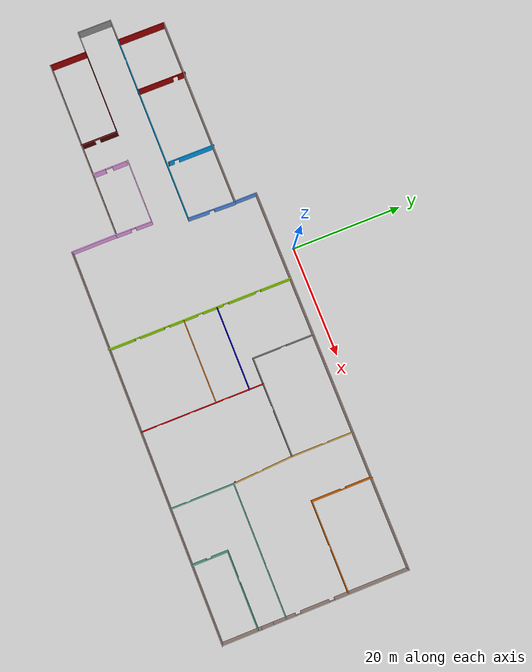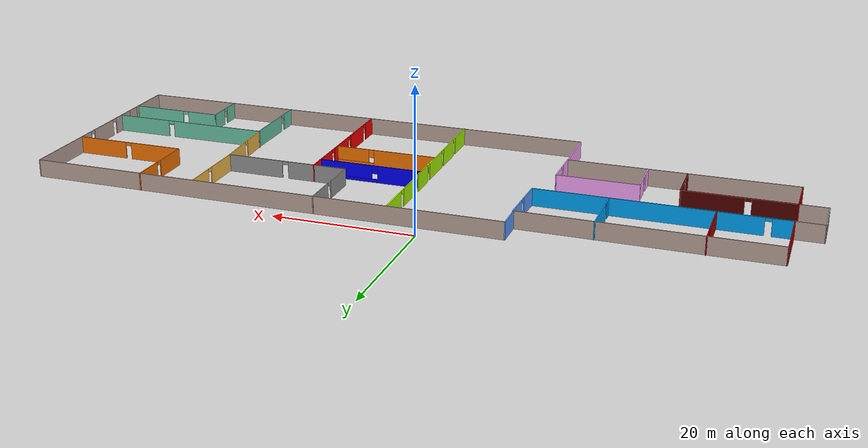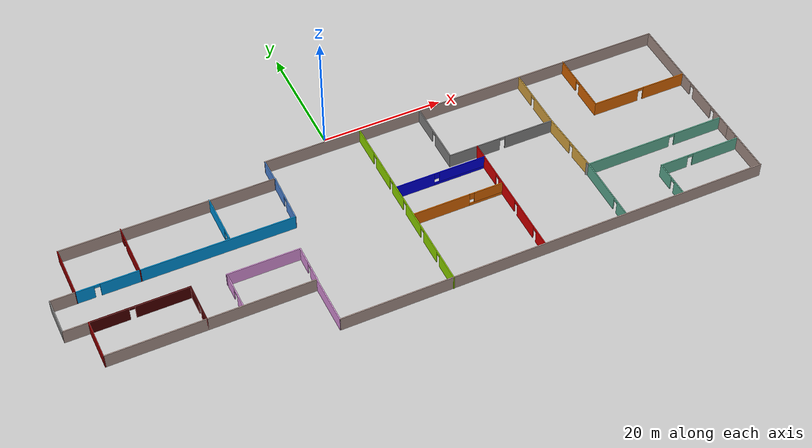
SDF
<sdf version="1.6">
 <model name="model2">
  <pose>4.15653 -19.2769 0 0 -0 0</pose>
  <link name="Wall_10">
   <collision name="Wall_10_Collision">
    <geometry><box><size>6.75 0.15 2.5</size></box></geometry>
    <pose>0 0 1.25 0 -0 0</pose>
   </collision>
   <visual name="Wall_10_Visual">
    <pose>0 0 1.25 0 -0 0</pose>
    <geometry><box><size>6.75 0.15 2.5</size></box></geometry>
    <material>
     <script><uri>file://media/materials/scripts/gazebo.material</uri><name>Gazebo/Grey</name></script>
     <ambient>0.666667 0 0 1</ambient>
    </material>
    <meta><layer>0</layer></meta>
   </visual>
   <pose>-49.5965 -5.19575 0 0 -0 1.5708</pose>
  </link>
  <link name="Wall_11">
   <collision name="Wall_11_Collision">
    <geometry><box><size>4 0.15 2.5</size></box></geometry>
    <pose>0 0 1.25 0 -0 0</pose>
   </collision>
   <visual name="Wall_11_Visual">
    <pose>0 0 1.25 0 -0 0</pose>
    <geometry><box><size>4 0.15 2.5</size></box></geometry>
    <material>
     <script><uri>file://media/materials/scripts/gazebo.material</uri><name>Gazebo/Grey</name></script>
     <ambient>0.760784 0.662745 0.627451 1</ambient>
    </material>
    <meta><layer>0</layer></meta>
   </visual>
   <pose>-51.5215 -1.89576 0 0 -0 3.14159</pose>
  </link>
  <link name="Wall_12">
   <collision name="Wall_12_Collision">
    <geometry><box><size>6.25 0.15 2.5</size></box></geometry>
    <pose>0 0 1.25 0 -0 0</pose>
   </collision>
   <visual name="Wall_12_Visual">
    <pose>0 0 1.25 0 -0 0</pose>
    <geometry><box><size>6.25 0.15 2.5</size></box></geometry>
    <material>
     <script><uri>file://media/materials/scripts/gazebo.material</uri><name>Gazebo/Grey</name></script>
     <ambient>0 0 0 1</ambient>
    </material>
    <meta><layer>0</layer></meta>
   </visual>
   <pose>-53.4465 1.15425 0 0 -0 1.5708</pose>
  </link>
  <link name="Wall_13">
   <collision name="Wall_13_Collision">
    <geometry><box><size>4 0.15 2.5</size></box></geometry>
    <pose>0 0 1.25 0 -0 0</pose>
   </collision>
   <visual name="Wall_13_Visual">
    <pose>0 0 1.25 0 -0 0</pose>
    <geometry><box><size>4 0.15 2.5</size></box></geometry>
    <material>
     <script><uri>file://media/materials/scripts/gazebo.material</uri><name>Gazebo/Grey</name></script>
     <ambient>0.760784 0.662745 0.627451 1</ambient>
    </material>
    <meta><layer>0</layer></meta>
   </visual>
   <pose>-51.5215 4.20425 0 0 -0 0</pose>
  </link>
  <link name="Wall_138">
   <pose>-39.8446 8.53928 0 0 0 -1.5708</pose>
   <visual name="Wall_138_Visual_0">
    <pose>-3.78309 0 1.25 0 -0 0</pose>
    <geometry><box><size>1.43381 0.15 2.5</size></box></geometry>
    <material>
     <script><uri>file://media/materials/scripts/gazebo.material</uri><name>Gazebo/Grey</name></script>
     <ambient>0.666667 0 0 1</ambient>
    </material>
    <meta><layer>0</layer></meta>
   </visual>
   <collision name="Wall_138_Collision_0">
    <geometry><box><size>1.43381 0.15 2.5</size></box></geometry>
    <pose>-3.78309 0 1.25 0 -0 0</pose>
   </collision>
   <visual name="Wall_138_Visual_1">
    <pose>1.16691 0 1.25 0 -0 0</pose>
    <geometry><box><size>6.66619 0.15 2.5</size></box></geometry>
    <material>
     <script><uri>file://media/materials/scripts/gazebo.material</uri><name>Gazebo/Grey</name></script>
     <ambient>0.666667 0 0 1</ambient>
    </material>
    <meta><layer>0</layer></meta>
   </visual>
   <collision name="Wall_138_Collision_1">
    <geometry><box><size>6.66619 0.15 2.5</size></box></geometry>
    <pose>1.16691 0 1.25 0 -0 0</pose>
   </collision>
   <visual name="Wall_138_Visual_2">
    <pose>-2.61619 0 2.25 0 -0 0</pose>
    <geometry><box><size>0.9 0.15 0.5</size></box></geometry>
    <material>
     <script><uri>file://media/materials/scripts/gazebo.material</uri><name>Gazebo/Grey</name></script>
     <ambient>0.666667 0 0 1</ambient>
    </material>
    <meta><layer>0</layer></meta>
   </visual>
   <collision name="Wall_138_Collision_2">
    <geometry><box><size>0.9 0.15 0.5</size></box></geometry>
    <pose>-2.61619 0 2.25 0 -0 0</pose>
   </collision>
  </link>
  <link name="Wall_14">
   <collision name="Wall_14_Collision">
    <geometry><box><size>8.75 0.15 2.5</size></box></geometry>
    <pose>0 0 1.25 0 -0 0</pose>
   </collision>
   <visual name="Wall_14_Visual">
    <pose>0 0 1.25 0 -0 0</pose>
    <geometry><box><size>8.75 0.15 2.5</size></box></geometry>
    <material>
     <script><uri>file://media/materials/scripts/gazebo.material</uri><name>Gazebo/Grey</name></script>
     <ambient>0.666667 0 0 1</ambient>
    </material>
    <meta><layer>0</layer></meta>
   </visual>
   <pose>-49.5965 8.50425 0 0 -0 1.5708</pose>
  </link>
  <link name="Wall_140">
   <pose>-25.8529 8.68288 0 0 0 -1.5708</pose>
   <visual name="Wall_140_Visual_0">
    <pose>-0.979474 0 1.25 0 -0 0</pose>
    <geometry><box><size>6.54105 0.15 2.5</size></box></geometry>
    <material>
     <script><uri>file://media/materials/scripts/gazebo.material</uri><name>Gazebo/Grey</name></script>
     <ambient>0 0.666667 1 1</ambient>
    </material>
    <meta><layer>0</layer></meta>
   </visual>
   <collision name="Wall_140_Collision_0">
    <geometry><box><size>6.54105 0.15 2.5</size></box></geometry>
    <pose>-0.979474 0 1.25 0 -0 0</pose>
   </collision>
   <visual name="Wall_140_Visual_1">
    <pose>3.72053 0 1.25 0 -0 0</pose>
    <geometry><box><size>1.05895 0.15 2.5</size></box></geometry>
    <material>
     <script><uri>file://media/materials/scripts/gazebo.material</uri><name>Gazebo/Grey</name></script>
     <ambient>0 0.666667 1 1</ambient>
    </material>
    <meta><layer>0</layer></meta>
   </visual>
   <collision name="Wall_140_Collision_1">
    <geometry><box><size>1.05895 0.15 2.5</size></box></geometry>
    <pose>3.72053 0 1.25 0 -0 0</pose>
   </collision>
   <visual name="Wall_140_Visual_2">
    <pose>2.74105 0 2.25 0 -0 0</pose>
    <geometry><box><size>0.9 0.15 0.5</size></box></geometry>
    <material>
     <script><uri>file://media/materials/scripts/gazebo.material</uri><name>Gazebo/Grey</name></script>
     <ambient>0 0.666667 1 1</ambient>
    </material>
    <meta><layer>0</layer></meta>
   </visual>
   <collision name="Wall_140_Collision_2">
    <geometry><box><size>0.9 0.15 0.5</size></box></geometry>
    <pose>2.74105 0 2.25 0 -0 0</pose>
   </collision>
  </link>
  <link name="Wall_142">
   <collision name="Wall_142_Collision">
    <geometry><box><size>0.15 0.15 2.5</size></box></geometry>
    <pose>0 0 1.25 0 -0 0</pose>
   </collision>
   <visual name="Wall_142_Visual">
    <pose>0 0 1.25 0 -0 0</pose>
    <geometry><box><size>0.15 0.15 2.5</size></box></geometry>
    <material>
     <script><uri>file://media/materials/scripts/gazebo.material</uri><name>Gazebo/Grey</name></script>
     <ambient>1 1 1 1</ambient>
    </material>
    <meta><layer>0</layer></meta>
   </visual>
   <pose>-25.8529 4.50788 0 0 -0 0</pose>
  </link>
  <link name="Wall_144">
   <pose>-41.9215 -1.89576 0 0 -0 0</pose>
   <visual name="Wall_144_Visual_0">
    <pose>-4.71669 0 1.25 0 -0 0</pose>
    <geometry><box><size>6.06663 0.15 2.5</size></box></geometry>
    <material>
     <script><uri>file://media/materials/scripts/gazebo.material</uri><name>Gazebo/Grey</name></script>
     <ambient>0.333333 0 0 1</ambient>
    </material>
    <meta><layer>0</layer></meta>
   </visual>
   <collision name="Wall_144_Collision_0">
    <geometry><box><size>6.06663 0.15 2.5</size></box></geometry>
    <pose>-4.71669 0 1.25 0 -0 0</pose>
   </collision>
   <visual name="Wall_144_Visual_1">
    <pose>3.48331 0 1.25 0 -0 0</pose>
    <geometry><box><size>8.53337 0.15 2.5</size></box></geometry>
    <material>
     <script><uri>file://media/materials/scripts/gazebo.material</uri><name>Gazebo/Grey</name></script>
     <ambient>0.333333 0 0 1</ambient>
    </material>
    <meta><layer>0</layer></meta>
   </visual>
   <collision name="Wall_144_Collision_1">
    <geometry><box><size>8.53337 0.15 2.5</size></box></geometry>
    <pose>3.48331 0 1.25 0 -0 0</pose>
   </collision>
   <visual name="Wall_144_Visual_2">
    <pose>-1.23337 0 2.25 0 -0 0</pose>
    <geometry><box><size>0.9 0.15 0.5</size></box></geometry>
    <material>
     <script><uri>file://media/materials/scripts/gazebo.material</uri><name>Gazebo/Grey</name></script>
     <ambient>0.333333 0 0 1</ambient>
    </material>
    <meta><layer>0</layer></meta>
   </visual>
   <collision name="Wall_144_Collision_2">
    <geometry><box><size>0.9 0.15 0.5</size></box></geometry>
    <pose>-1.23337 0 2.25 0 -0 0</pose>
   </collision>
  </link>
  <link name="Wall_145">
   <pose>-34.2465 -5.19575 0 0 0 -1.5708</pose>
   <visual name="Wall_145_Visual_0">
    <pose>-1.70278 0 1.25 0 -0 0</pose>
    <geometry><box><size>3.34444 0.15 2.5</size></box></geometry>
    <material>
     <script><uri>file://media/materials/scripts/gazebo.material</uri><name>Gazebo/Grey</name></script>
     <ambient>0.333333 0 0 1</ambient>
    </material>
    <meta><layer>0</layer></meta>
   </visual>
   <collision name="Wall_145_Collision_0">
    <geometry><box><size>3.34444 0.15 2.5</size></box></geometry>
    <pose>-1.70278 0 1.25 0 -0 0</pose>
   </collision>
   <visual name="Wall_145_Visual_1">
    <pose>2.12222 0 1.25 0 -0 0</pose>
    <geometry><box><size>2.50556 0.15 2.5</size></box></geometry>
    <material>
     <script><uri>file://media/materials/scripts/gazebo.material</uri><name>Gazebo/Grey</name></script>
     <ambient>0.333333 0 0 1</ambient>
    </material>
    <meta><layer>0</layer></meta>
   </visual>
   <collision name="Wall_145_Collision_1">
    <geometry><box><size>2.50556 0.15 2.5</size></box></geometry>
    <pose>2.12222 0 1.25 0 -0 0</pose>
   </collision>
   <visual name="Wall_145_Visual_2">
    <pose>0.419441 0 2.25 0 -0 0</pose>
    <geometry><box><size>0.9 0.15 0.5</size></box></geometry>
    <material>
     <script><uri>file://media/materials/scripts/gazebo.material</uri><name>Gazebo/Grey</name></script>
     <ambient>0.333333 0 0 1</ambient>
    </material>
    <meta><layer>0</layer></meta>
   </visual>
   <collision name="Wall_145_Collision_2">
    <geometry><box><size>0.9 0.15 0.5</size></box></geometry>
    <pose>0.419441 0 2.25 0 -0 0</pose>
   </collision>
  </link>
  <link name="Wall_148">
   <collision name="Wall_148_Collision">
    <geometry><box><size>11.6888 0.15 2.5</size></box></geometry>
    <pose>0 0 1.25 0 -0 0</pose>
   </collision>
   <visual name="Wall_148_Visual">
    <pose>0 0 1.25 0 -0 0</pose>
    <geometry><box><size>11.6888 0.15 2.5</size></box></geometry>
    <material>
     <script><uri>file://media/materials/scripts/gazebo.material</uri><name>Gazebo/Grey</name></script>
     <ambient>1 0.666667 1 1</ambient>
    </material>
    <meta><layer>0</layer></meta>
   </visual>
   <pose>-23.0095 -1.98814 0 0 -0 0</pose>
  </link>
  <link name="Wall_15">
   <collision name="Wall_15_Collision">
    <geometry><box><size>34.5001 0.15 2.5</size></box></geometry>
    <pose>0 0 1.25 0 -0 0</pose>
   </collision>
   <visual name="Wall_15_Visual">
    <pose>0 0 1.25 0 -0 0</pose>
    <geometry><box><size>34.5001 0.15 2.5</size></box></geometry>
    <material>
     <script><uri>file://media/materials/scripts/gazebo.material</uri><name>Gazebo/Grey</name></script>
     <ambient>0.760784 0.662745 0.627451 1</ambient>
    </material>
    <meta><layer>0</layer></meta>
   </visual>
   <pose>-32.4215 12.7577 0 0 0 -0.002709</pose>
  </link>
  <link name="Wall_150">
   <pose>-28.7177 -5.3546 0 0 -0 1.5708</pose>
   <visual name="Wall_150_Visual_0">
    <pose>-1.96653 0 1.25 0 -0 0</pose>
    <geometry><box><size>2.31694 0.15 2.5</size></box></geometry>
    <material>
     <script><uri>file://media/materials/scripts/gazebo.material</uri><name>Gazebo/Grey</name></script>
     <ambient>1 0.666667 1 1</ambient>
    </material>
    <meta><layer>0</layer></meta>
   </visual>
   <collision name="Wall_150_Collision_0">
    <geometry><box><size>2.31694 0.15 2.5</size></box></geometry>
    <pose>-1.96653 0 1.25 0 -0 0</pose>
   </collision>
   <visual name="Wall_150_Visual_1">
    <pose>1.79201 0 1.25 0 -0 0</pose>
    <geometry><box><size>2.66598 0.15 2.5</size></box></geometry>
    <material>
     <script><uri>file://media/materials/scripts/gazebo.material</uri><name>Gazebo/Grey</name></script>
     <ambient>1 0.666667 1 1</ambient>
    </material>
    <meta><layer>0</layer></meta>
   </visual>
   <collision name="Wall_150_Collision_1">
    <geometry><box><size>2.66598 0.15 2.5</size></box></geometry>
    <pose>1.79201 0 1.25 0 -0 0</pose>
   </collision>
   <visual name="Wall_150_Visual_2">
    <pose>-0.174519 0 2.25 0 -0 0</pose>
    <geometry><box><size>1.26708 0.15 0.5</size></box></geometry>
    <material>
     <script><uri>file://media/materials/scripts/gazebo.material</uri><name>Gazebo/Grey</name></script>
     <ambient>1 0.666667 1 1</ambient>
    </material>
    <meta><layer>0</layer></meta>
   </visual>
   <collision name="Wall_150_Collision_2">
    <geometry><box><size>1.26708 0.15 0.5</size></box></geometry>
    <pose>-0.174519 0 2.25 0 -0 0</pose>
   </collision>
  </link>
  <link name="Wall_152">
   <pose>-17.2127 -5.24195 0 0 -0 1.5604</pose>
   <visual name="Wall_152_Visual_0">
    <pose>-1.97159 0 1.25 0 -0 0</pose>
    <geometry><box><size>2.71479 0.15 2.5</size></box></geometry>
    <material>
     <script><uri>file://media/materials/scripts/gazebo.material</uri><name>Gazebo/Grey</name></script>
     <ambient>1 0.666667 1 1</ambient>
    </material>
    <meta><layer>0</layer></meta>
   </visual>
   <collision name="Wall_152_Collision_0">
    <geometry><box><size>2.71479 0.15 2.5</size></box></geometry>
    <pose>-1.97159 0 1.25 0 -0 0</pose>
   </collision>
   <visual name="Wall_152_Visual_1">
    <pose>1.80739 0 1.25 0 -0 0</pose>
    <geometry><box><size>3.04318 0.15 2.5</size></box></geometry>
    <material>
     <script><uri>file://media/materials/scripts/gazebo.material</uri><name>Gazebo/Grey</name></script>
     <ambient>1 0.666667 1 1</ambient>
    </material>
    <meta><layer>0</layer></meta>
   </visual>
   <collision name="Wall_152_Collision_1">
    <geometry><box><size>3.04318 0.15 2.5</size></box></geometry>
    <pose>1.80739 0 1.25 0 -0 0</pose>
   </collision>
   <visual name="Wall_152_Visual_2">
    <pose>-0.164195 0 2.25 0 -0 0</pose>
    <geometry><box><size>0.9 0.15 0.5</size></box></geometry>
    <material>
     <script><uri>file://media/materials/scripts/gazebo.material</uri><name>Gazebo/Grey</name></script>
     <ambient>1 0.666667 1 1</ambient>
    </material>
    <meta><layer>0</layer></meta>
   </visual>
   <collision name="Wall_152_Collision_2">
    <geometry><box><size>0.9 0.15 0.5</size></box></geometry>
    <pose>-0.164195 0 2.25 0 -0 0</pose>
   </collision>
  </link>
  <link name="Wall_154">
   <pose>0.736292 -0.06557 0 0 0 -1.5708</pose>
   <visual name="Wall_154_Visual_0">
    <pose>-13.9702 0 1.25 0 -0 0</pose>
    <geometry><box><size>5.5595 0.15 2.5</size></box></geometry>
    <material>
     <script><uri>file://media/materials/scripts/gazebo.material</uri><name>Gazebo/Grey</name></script>
     <ambient>0.666667 1 0 1</ambient>
    </material>
    <meta><layer>0</layer></meta>
   </visual>
   <collision name="Wall_154_Collision_0">
    <geometry><box><size>5.5595 0.15 2.5</size></box></geometry>
    <pose>-13.9702 0 1.25 0 -0 0</pose>
   </collision>
   <visual name="Wall_154_Visual_1">
    <pose>-7.76664 0 1.25 0 -0 0</pose>
    <geometry><box><size>5.04771 0.15 2.5</size></box></geometry>
    <material>
     <script><uri>file://media/materials/scripts/gazebo.material</uri><name>Gazebo/Grey</name></script>
     <ambient>0.666667 1 0 1</ambient>
    </material>
    <meta><layer>0</layer></meta>
   </visual>
   <collision name="Wall_154_Collision_1">
    <geometry><box><size>5.04771 0.15 2.5</size></box></geometry>
    <pose>-7.76664 0 1.25 0 -0 0</pose>
   </collision>
   <visual name="Wall_154_Visual_2">
    <pose>-2.4133 0 1.25 0 -0 0</pose>
    <geometry><box><size>3.85898 0.15 2.5</size></box></geometry>
    <material>
     <script><uri>file://media/materials/scripts/gazebo.material</uri><name>Gazebo/Grey</name></script>
     <ambient>0.666667 1 0 1</ambient>
    </material>
    <meta><layer>0</layer></meta>
   </visual>
   <collision name="Wall_154_Collision_2">
    <geometry><box><size>3.85898 0.15 2.5</size></box></geometry>
    <pose>-2.4133 0 1.25 0 -0 0</pose>
   </collision>
   <visual name="Wall_154_Visual_3">
    <pose>3.03177 0 1.25 0 -0 0</pose>
    <geometry><box><size>5.23114 0.15 2.5</size></box></geometry>
    <material>
     <script><uri>file://media/materials/scripts/gazebo.material</uri><name>Gazebo/Grey</name></script>
     <ambient>0.666667 1 0 1</ambient>
    </material>
    <meta><layer>0</layer></meta>
   </visual>
   <collision name="Wall_154_Collision_3">
    <geometry><box><size>5.23114 0.15 2.5</size></box></geometry>
    <pose>3.03177 0 1.25 0 -0 0</pose>
   </collision>
   <visual name="Wall_154_Visual_4">
    <pose>8.78267 0 1.25 0 -0 0</pose>
    <geometry><box><size>4.47068 0.15 2.5</size></box></geometry>
    <material>
     <script><uri>file://media/materials/scripts/gazebo.material</uri><name>Gazebo/Grey</name></script>
     <ambient>0.666667 1 0 1</ambient>
    </material>
    <meta><layer>0</layer></meta>
   </visual>
   <collision name="Wall_154_Collision_4">
    <geometry><box><size>4.47068 0.15 2.5</size></box></geometry>
    <pose>8.78267 0 1.25 0 -0 0</pose>
   </collision>
   <visual name="Wall_154_Visual_5">
    <pose>14.334 0 1.25 0 -0 0</pose>
    <geometry><box><size>4.83199 0.15 2.5</size></box></geometry>
    <material>
     <script><uri>file://media/materials/scripts/gazebo.material</uri><name>Gazebo/Grey</name></script>
     <ambient>0.666667 1 0 1</ambient>
    </material>
    <meta><layer>0</layer></meta>
   </visual>
   <collision name="Wall_154_Collision_5">
    <geometry><box><size>4.83199 0.15 2.5</size></box></geometry>
    <pose>14.334 0 1.25 0 -0 0</pose>
   </collision>
   <visual name="Wall_154_Visual_6">
    <pose>-10.7405 0 2.25 0 -0 0</pose>
    <geometry><box><size>0.9 0.15 0.5</size></box></geometry>
    <material>
     <script><uri>file://media/materials/scripts/gazebo.material</uri><name>Gazebo/Grey</name></script>
     <ambient>0.666667 1 0 1</ambient>
    </material>
    <meta><layer>0</layer></meta>
   </visual>
   <collision name="Wall_154_Collision_6">
    <geometry><box><size>0.9 0.15 0.5</size></box></geometry>
    <pose>-10.7405 0 2.25 0 -0 0</pose>
   </collision>
   <visual name="Wall_154_Visual_7">
    <pose>-4.79279 0 2.25 0 -0 0</pose>
    <geometry><box><size>0.9 0.15 0.5</size></box></geometry>
    <material>
     <script><uri>file://media/materials/scripts/gazebo.material</uri><name>Gazebo/Grey</name></script>
     <ambient>0.666667 1 0 1</ambient>
    </material>
    <meta><layer>0</layer></meta>
   </visual>
   <collision name="Wall_154_Collision_7">
    <geometry><box><size>0.9 0.15 0.5</size></box></geometry>
    <pose>-4.79279 0 2.25 0 -0 0</pose>
   </collision>
   <visual name="Wall_154_Visual_8">
    <pose>-0.033804 0 2.25 0 -0 0</pose>
    <geometry><box><size>0.9 0.15 0.5</size></box></geometry>
    <material>
     <script><uri>file://media/materials/scripts/gazebo.material</uri><name>Gazebo/Grey</name></script>
     <ambient>0.666667 1 0 1</ambient>
    </material>
    <meta><layer>0</layer></meta>
   </visual>
   <collision name="Wall_154_Collision_8">
    <geometry><box><size>0.9 0.15 0.5</size></box></geometry>
    <pose>-0.033804 0 2.25 0 -0 0</pose>
   </collision>
   <visual name="Wall_154_Visual_9">
    <pose>6.09733 0 2.25 0 -0 0</pose>
    <geometry><box><size>0.9 0.15 0.5</size></box></geometry>
    <material>
     <script><uri>file://media/materials/scripts/gazebo.material</uri><name>Gazebo/Grey</name></script>
     <ambient>0.666667 1 0 1</ambient>
    </material>
    <meta><layer>0</layer></meta>
   </visual>
   <collision name="Wall_154_Collision_9">
    <geometry><box><size>0.9 0.15 0.5</size></box></geometry>
    <pose>6.09733 0 2.25 0 -0 0</pose>
   </collision>
   <visual name="Wall_154_Visual_10">
    <pose>11.468 0 2.25 0 -0 0</pose>
    <geometry><box><size>0.9 0.15 0.5</size></box></geometry>
    <material>
     <script><uri>file://media/materials/scripts/gazebo.material</uri><name>Gazebo/Grey</name></script>
     <ambient>0.666667 1 0 1</ambient>
    </material>
    <meta><layer>0</layer></meta>
   </visual>
   <collision name="Wall_154_Collision_10">
    <geometry><box><size>0.9 0.15 0.5</size></box></geometry>
    <pose>11.468 0 2.25 0 -0 0</pose>
   </collision>
  </link>
  <link name="Wall_156">
   <pose>37.1125 11.3156 0 0 0 -1.5708</pose>
   <visual name="Wall_156_Visual_0">
    <pose>-3.1261 0 1.25 0 -0 0</pose>
    <geometry><box><size>4.7478 0.15 2.5</size></box></geometry>
    <material>
     <script><uri>file://media/materials/scripts/gazebo.material</uri><name>Gazebo/Grey</name></script>
     <ambient>0.996078 0.47451 0.0196078 1</ambient>
    </material>
    <meta><layer>0</layer></meta>
   </visual>
   <collision name="Wall_156_Collision_0">
    <geometry><box><size>4.7478 0.15 2.5</size></box></geometry>
    <pose>-3.1261 0 1.25 0 -0 0</pose>
   </collision>
   <visual name="Wall_156_Visual_1">
    <pose>2.8239 0 1.25 0 -0 0</pose>
    <geometry><box><size>5.3522 0.15 2.5</size></box></geometry>
    <material>
     <script><uri>file://media/materials/scripts/gazebo.material</uri><name>Gazebo/Grey</name></script>
     <ambient>0.996078 0.47451 0.0196078 1</ambient>
    </material>
    <meta><layer>0</layer></meta>
   </visual>
   <collision name="Wall_156_Collision_1">
    <geometry><box><size>5.3522 0.15 2.5</size></box></geometry>
    <pose>2.8239 0 1.25 0 -0 0</pose>
   </collision>
   <visual name="Wall_156_Visual_2">
    <pose>-0.302202 0 2.25 0 -0 0</pose>
    <geometry><box><size>0.9 0.15 0.5</size></box></geometry>
    <material>
     <script><uri>file://media/materials/scripts/gazebo.material</uri><name>Gazebo/Grey</name></script>
     <ambient>0.996078 0.47451 0.0196078 1</ambient>
    </material>
    <meta><layer>0</layer></meta>
   </visual>
   <collision name="Wall_156_Collision_2">
    <geometry><box><size>0.9 0.15 0.5</size></box></geometry>
    <pose>-0.302202 0 2.25 0 -0 0</pose>
   </collision>
  </link>
  <link name="Wall_157">
   <pose>45.1625 5.89057 0 0 -0 0</pose>
   <visual name="Wall_157_Visual_0">
    <pose>-4.16501 0 1.25 0 -0 0</pose>
    <geometry><box><size>7.91997 0.15 2.5</size></box></geometry>
    <material>
     <script><uri>file://media/materials/scripts/gazebo.material</uri><name>Gazebo/Grey</name></script>
     <ambient>0.996078 0.47451 0.0196078 1</ambient>
    </material>
    <meta><layer>0</layer></meta>
   </visual>
   <collision name="Wall_157_Collision_0">
    <geometry><box><size>7.91997 0.15 2.5</size></box></geometry>
    <pose>-4.16501 0 1.25 0 -0 0</pose>
   </collision>
   <visual name="Wall_157_Visual_1">
    <pose>4.40999 0 1.25 0 -0 0</pose>
    <geometry><box><size>7.43003 0.15 2.5</size></box></geometry>
    <material>
     <script><uri>file://media/materials/scripts/gazebo.material</uri><name>Gazebo/Grey</name></script>
     <ambient>0.996078 0.47451 0.0196078 1</ambient>
    </material>
    <meta><layer>0</layer></meta>
   </visual>
   <collision name="Wall_157_Collision_1">
    <geometry><box><size>7.43003 0.15 2.5</size></box></geometry>
    <pose>4.40999 0 1.25 0 -0 0</pose>
   </collision>
   <visual name="Wall_157_Visual_2">
    <pose>0.244972 0 2.25 0 -0 0</pose>
    <geometry><box><size>0.9 0.15 0.5</size></box></geometry>
    <material>
     <script><uri>file://media/materials/scripts/gazebo.material</uri><name>Gazebo/Grey</name></script>
     <ambient>0.996078 0.47451 0.0196078 1</ambient>
    </material>
    <meta><layer>0</layer></meta>
   </visual>
   <collision name="Wall_157_Collision_2">
    <geometry><box><size>0.9 0.15 0.5</size></box></geometry>
    <pose>0.244972 0 2.25 0 -0 0</pose>
   </collision>
  </link>
  <link name="Wall_159">
   <pose>29.5873 -10.9278 0 0 -0 1.5708</pose>
   <visual name="Wall_159_Visual_0">
    <pose>-4.39922 0 1.25 0 -0 0</pose>
    <geometry><box><size>2.70155 0.15 2.5</size></box></geometry>
    <material>
     <script><uri>file://media/materials/scripts/gazebo.material</uri><name>Gazebo/Grey</name></script>
     <ambient>0.435294 0.796078 0.67451 1</ambient>
    </material>
    <meta><layer>0</layer></meta>
   </visual>
   <collision name="Wall_159_Collision_0">
    <geometry><box><size>2.70155 0.15 2.5</size></box></geometry>
    <pose>-4.39922 0 1.25 0 -0 0</pose>
   </collision>
   <visual name="Wall_159_Visual_1">
    <pose>1.80078 0 1.25 0 -0 0</pose>
    <geometry><box><size>7.89845 0.15 2.5</size></box></geometry>
    <material>
     <script><uri>file://media/materials/scripts/gazebo.material</uri><name>Gazebo/Grey</name></script>
     <ambient>0.435294 0.796078 0.67451 1</ambient>
    </material>
    <meta><layer>0</layer></meta>
   </visual>
   <collision name="Wall_159_Collision_1">
    <geometry><box><size>7.89845 0.15 2.5</size></box></geometry>
    <pose>1.80078 0 1.25 0 -0 0</pose>
   </collision>
   <visual name="Wall_159_Visual_2">
    <pose>-2.59845 0 2.25 0 -0 0</pose>
    <geometry><box><size>0.9 0.15 0.5</size></box></geometry>
    <material>
     <script><uri>file://media/materials/scripts/gazebo.material</uri><name>Gazebo/Grey</name></script>
     <ambient>0.435294 0.796078 0.67451 1</ambient>
    </material>
    <meta><layer>0</layer></meta>
   </visual>
   <collision name="Wall_159_Collision_2">
    <geometry><box><size>0.9 0.15 0.5</size></box></geometry>
    <pose>-2.59845 0 2.25 0 -0 0</pose>
   </collision>
  </link>
  <link name="Wall_16">
   <collision name="Wall_16_Collision">
    <geometry><box><size>4.09305 0.15 2.5</size></box></geometry>
    <pose>0 0 1.25 0 -0 0</pose>
   </collision>
   <visual name="Wall_16_Visual">
    <pose>0 0 1.25 0 -0 0</pose>
    <geometry><box><size>4.09305 0.15 2.5</size></box></geometry>
    <material>
     <script><uri>file://media/materials/scripts/gazebo.material</uri><name>Gazebo/Grey</name></script>
     <ambient>0.368627 0.623529 1 1</ambient>
    </material>
    <meta><layer>0</layer></meta>
   </visual>
   <pose>-15.2465 14.6827 0 0 -0 1.5708</pose>
  </link>
  <link name="Wall_160">
   <pose>41.3873 -5.25278 0 0 -0 0</pose>
   <visual name="Wall_160_Visual_0">
    <pose>-4.60876 0 1.25 0 -0 0</pose>
    <geometry><box><size>14.5325 0.15 2.5</size></box></geometry>
    <material>
     <script><uri>file://media/materials/scripts/gazebo.material</uri><name>Gazebo/Grey</name></script>
     <ambient>0.435294 0.796078 0.67451 1</ambient>
    </material>
    <meta><layer>0</layer></meta>
   </visual>
   <collision name="Wall_160_Collision_0">
    <geometry><box><size>14.5325 0.15 2.5</size></box></geometry>
    <pose>-4.60876 0 1.25 0 -0 0</pose>
   </collision>
   <visual name="Wall_160_Visual_1">
    <pose>7.71624 0 1.25 0 -0 0</pose>
    <geometry><box><size>8.31752 0.15 2.5</size></box></geometry>
    <material>
     <script><uri>file://media/materials/scripts/gazebo.material</uri><name>Gazebo/Grey</name></script>
     <ambient>0.435294 0.796078 0.67451 1</ambient>
    </material>
    <meta><layer>0</layer></meta>
   </visual>
   <collision name="Wall_160_Collision_1">
    <geometry><box><size>8.31752 0.15 2.5</size></box></geometry>
    <pose>7.71624 0 1.25 0 -0 0</pose>
   </collision>
   <visual name="Wall_160_Visual_2">
    <pose>3.10748 0 2.25 0 -0 0</pose>
    <geometry><box><size>0.9 0.15 0.5</size></box></geometry>
    <material>
     <script><uri>file://media/materials/scripts/gazebo.material</uri><name>Gazebo/Grey</name></script>
     <ambient>0.435294 0.796078 0.67451 1</ambient>
    </material>
    <meta><layer>0</layer></meta>
   </visual>
   <collision name="Wall_160_Collision_2">
    <geometry><box><size>0.9 0.15 0.5</size></box></geometry>
    <pose>3.10748 0 2.25 0 -0 0</pose>
   </collision>
  </link>
  <link name="Wall_162">
   <pose>11.1108 11.1294 0 0 0 -1.5708</pose>
   <visual name="Wall_162_Visual_0">
    <pose>-3.08997 0 1.25 0 -0 0</pose>
    <geometry><box><size>5.07006 0.15 2.5</size></box></geometry>
    <material>
     <script><uri>file://media/materials/scripts/gazebo.material</uri><name>Gazebo/Grey</name></script>
     <ambient>1 1 1 1</ambient>
    </material>
    <meta><layer>0</layer></meta>
   </visual>
   <collision name="Wall_162_Collision_0">
    <geometry><box><size>5.07006 0.15 2.5</size></box></geometry>
    <pose>-3.08997 0 1.25 0 -0 0</pose>
   </collision>
   <visual name="Wall_162_Visual_1">
    <pose>2.98503 0 1.25 0 -0 0</pose>
    <geometry><box><size>5.27994 0.15 2.5</size></box></geometry>
    <material>
     <script><uri>file://media/materials/scripts/gazebo.material</uri><name>Gazebo/Grey</name></script>
     <ambient>1 1 1 1</ambient>
    </material>
    <meta><layer>0</layer></meta>
   </visual>
   <collision name="Wall_162_Collision_1">
    <geometry><box><size>5.27994 0.15 2.5</size></box></geometry>
    <pose>2.98503 0 1.25 0 -0 0</pose>
   </collision>
   <visual name="Wall_162_Visual_2">
    <pose>-0.104939 0 2.25 0 -0 0</pose>
    <geometry><box><size>0.9 0.15 0.5</size></box></geometry>
    <material>
     <script><uri>file://media/materials/scripts/gazebo.material</uri><name>Gazebo/Grey</name></script>
     <ambient>1 1 1 1</ambient>
    </material>
    <meta><layer>0</layer></meta>
   </visual>
   <collision name="Wall_162_Collision_2">
    <geometry><box><size>0.9 0.15 0.5</size></box></geometry>
    <pose>-0.104939 0 2.25 0 -0 0</pose>
   </collision>
  </link>
  <link name="Wall_163">
   <pose>20.0358 5.57939 0 0 -0 0</pose>
   <visual name="Wall_163_Visual_0">
    <pose>-4.63218 0 1.25 0 -0 0</pose>
    <geometry><box><size>8.73564 0.15 2.5</size></box></geometry>
    <material>
     <script><uri>file://media/materials/scripts/gazebo.material</uri><name>Gazebo/Grey</name></script>
     <ambient>1 1 1 1</ambient>
    </material>
    <meta><layer>0</layer></meta>
   </visual>
   <collision name="Wall_163_Collision_0">
    <geometry><box><size>8.73564 0.15 2.5</size></box></geometry>
    <pose>-4.63218 0 1.25 0 -0 0</pose>
   </collision>
   <visual name="Wall_163_Visual_1">
    <pose>4.81782 0 1.25 0 -0 0</pose>
    <geometry><box><size>8.36436 0.15 2.5</size></box></geometry>
    <material>
     <script><uri>file://media/materials/scripts/gazebo.material</uri><name>Gazebo/Grey</name></script>
     <ambient>1 1 1 1</ambient>
    </material>
    <meta><layer>0</layer></meta>
   </visual>
   <collision name="Wall_163_Collision_1">
    <geometry><box><size>8.36436 0.15 2.5</size></box></geometry>
    <pose>4.81782 0 1.25 0 -0 0</pose>
   </collision>
   <visual name="Wall_163_Visual_2">
    <pose>0.185635 0 2.25 0 -0 0</pose>
    <geometry><box><size>0.9 0.15 0.5</size></box></geometry>
    <material>
     <script><uri>file://media/materials/scripts/gazebo.material</uri><name>Gazebo/Grey</name></script>
     <ambient>1 1 1 1</ambient>
    </material>
    <meta><layer>0</layer></meta>
   </visual>
   <collision name="Wall_163_Collision_2">
    <geometry><box><size>0.9 0.15 0.5</size></box></geometry>
    <pose>0.185635 0 2.25 0 -0 0</pose>
   </collision>
  </link>
  <link name="Wall_164">
   <pose>28.9608 11.0044 0 0 -0 1.5708</pose>
   <visual name="Wall_164_Visual_0">
    <pose>-2.61531 0 1.25 0 -0 0</pose>
    <geometry><box><size>5.76938 0.15 2.5</size></box></geometry>
    <material>
     <script><uri>file://media/materials/scripts/gazebo.material</uri><name>Gazebo/Grey</name></script>
     <ambient>1 0.764706 0.305882 1</ambient>
    </material>
    <meta><layer>0</layer></meta>
   </visual>
   <collision name="Wall_164_Collision_0">
    <geometry><box><size>5.76938 0.15 2.5</size></box></geometry>
    <pose>-2.61531 0 1.25 0 -0 0</pose>
   </collision>
   <visual name="Wall_164_Visual_1">
    <pose>3.33469 0 1.25 0 -0 0</pose>
    <geometry><box><size>4.33062 0.15 2.5</size></box></geometry>
    <material>
     <script><uri>file://media/materials/scripts/gazebo.material</uri><name>Gazebo/Grey</name></script>
     <ambient>1 0.764706 0.305882 1</ambient>
    </material>
    <meta><layer>0</layer></meta>
   </visual>
   <collision name="Wall_164_Collision_1">
    <geometry><box><size>4.33062 0.15 2.5</size></box></geometry>
    <pose>3.33469 0 1.25 0 -0 0</pose>
   </collision>
   <visual name="Wall_164_Visual_2">
    <pose>0.719383 0 2.25 0 -0 0</pose>
    <geometry><box><size>0.9 0.15 0.5</size></box></geometry>
    <material>
     <script><uri>file://media/materials/scripts/gazebo.material</uri><name>Gazebo/Grey</name></script>
     <ambient>1 0.764706 0.305882 1</ambient>
    </material>
    <meta><layer>0</layer></meta>
   </visual>
   <collision name="Wall_164_Collision_2">
    <geometry><box><size>0.9 0.15 0.5</size></box></geometry>
    <pose>0.719383 0 2.25 0 -0 0</pose>
   </collision>
  </link>
  <link name="Wall_167">
   <pose>39.5697 -13.4418 0 0 -0 1.5708</pose>
   <visual name="Wall_167_Visual_0">
    <pose>-1.9566 0 1.25 0 -0 0</pose>
    <geometry><box><size>2.58681 0.15 2.5</size></box></geometry>
    <material>
     <script><uri>file://media/materials/scripts/gazebo.material</uri><name>Gazebo/Grey</name></script>
     <ambient>0.435294 0.796078 0.67451 1</ambient>
    </material>
    <meta><layer>0</layer></meta>
   </visual>
   <collision name="Wall_167_Collision_0">
    <geometry><box><size>2.58681 0.15 2.5</size></box></geometry>
    <pose>-1.9566 0 1.25 0 -0 0</pose>
   </collision>
   <visual name="Wall_167_Visual_1">
    <pose>1.7434 0 1.25 0 -0 0</pose>
    <geometry><box><size>3.01319 0.15 2.5</size></box></geometry>
    <material>
     <script><uri>file://media/materials/scripts/gazebo.material</uri><name>Gazebo/Grey</name></script>
     <ambient>0.435294 0.796078 0.67451 1</ambient>
    </material>
    <meta><layer>0</layer></meta>
   </visual>
   <collision name="Wall_167_Collision_1">
    <geometry><box><size>3.01319 0.15 2.5</size></box></geometry>
    <pose>1.7434 0 1.25 0 -0 0</pose>
   </collision>
   <visual name="Wall_167_Visual_2">
    <pose>-0.213192 0 2.25 0 -0 0</pose>
    <geometry><box><size>0.9 0.15 0.5</size></box></geometry>
    <material>
     <script><uri>file://media/materials/scripts/gazebo.material</uri><name>Gazebo/Grey</name></script>
     <ambient>0.435294 0.796078 0.67451 1</ambient>
    </material>
    <meta><layer>0</layer></meta>
   </visual>
   <collision name="Wall_167_Collision_2">
    <geometry><box><size>0.9 0.15 0.5</size></box></geometry>
    <pose>-0.213192 0 2.25 0 -0 0</pose>
   </collision>
  </link>
  <link name="Wall_168">
   <pose>46.3697 -10.2668 0 0 -0 0</pose>
   <visual name="Wall_168_Visual_0">
    <pose>-4.45927 0 1.25 0 -0 0</pose>
    <geometry><box><size>4.83146 0.15 2.5</size></box></geometry>
    <material>
     <script><uri>file://media/materials/scripts/gazebo.material</uri><name>Gazebo/Grey</name></script>
     <ambient>0.435294 0.796078 0.67451 1</ambient>
    </material>
    <meta><layer>0</layer></meta>
   </visual>
   <collision name="Wall_168_Collision_0">
    <geometry><box><size>4.83146 0.15 2.5</size></box></geometry>
    <pose>-4.45927 0 1.25 0 -0 0</pose>
   </collision>
   <visual name="Wall_168_Visual_1">
    <pose>2.86573 0 1.25 0 -0 0</pose>
    <geometry><box><size>8.01854 0.15 2.5</size></box></geometry>
    <material>
     <script><uri>file://media/materials/scripts/gazebo.material</uri><name>Gazebo/Grey</name></script>
     <ambient>0.435294 0.796078 0.67451 1</ambient>
    </material>
    <meta><layer>0</layer></meta>
   </visual>
   <collision name="Wall_168_Collision_1">
    <geometry><box><size>8.01854 0.15 2.5</size></box></geometry>
    <pose>2.86573 0 1.25 0 -0 0</pose>
   </collision>
   <visual name="Wall_168_Visual_2">
    <pose>-1.59354 0 2.25 0 -0 0</pose>
    <geometry><box><size>0.9 0.15 0.5</size></box></geometry>
    <material>
     <script><uri>file://media/materials/scripts/gazebo.material</uri><name>Gazebo/Grey</name></script>
     <ambient>0.435294 0.796078 0.67451 1</ambient>
    </material>
    <meta><layer>0</layer></meta>
   </visual>
   <collision name="Wall_168_Collision_2">
    <geometry><box><size>0.9 0.15 0.5</size></box></geometry>
    <pose>-1.59354 0 2.25 0 -0 0</pose>
   </collision>
  </link>
  <link name="Wall_17">
   <collision name="Wall_17_Collision">
    <geometry><box><size>68.75 0.15 2.5</size></box></geometry>
    <pose>0 0 1.25 0 -0 0</pose>
   </collision>
   <visual name="Wall_17_Visual">
    <pose>0 0 1.25 0 -0 0</pose>
    <geometry><box><size>68.75 0.15 2.5</size></box></geometry>
    <material>
     <script><uri>file://media/materials/scripts/gazebo.material</uri><name>Gazebo/Grey</name></script>
     <ambient>0.760784 0.662745 0.627451 1</ambient>
    </material>
    <meta><layer>0</layer></meta>
   </visual>
   <pose>19.0535 16.6542 0 0 -0 0</pose>
  </link>
  <link name="Wall_170">
   <pose>15.8092 -5.45693 0 0 0 -1.5708</pose>
   <visual name="Wall_170_Visual_0">
    <pose>-7.85114 0 1.25 0 -0 0</pose>
    <geometry><box><size>6.54772 0.15 2.5</size></box></geometry>
    <material>
     <script><uri>file://media/materials/scripts/gazebo.material</uri><name>Gazebo/Grey</name></script>
     <ambient>1 0 0 1</ambient>
    </material>
    <meta><layer>0</layer></meta>
   </visual>
   <collision name="Wall_170_Collision_0">
    <geometry><box><size>6.54772 0.15 2.5</size></box></geometry>
    <pose>-7.85114 0 1.25 0 -0 0</pose>
   </collision>
   <visual name="Wall_170_Visual_1">
    <pose>-1.03767 0 1.25 0 -0 0</pose>
    <geometry><box><size>5.27923 0.15 2.5</size></box></geometry>
    <material>
     <script><uri>file://media/materials/scripts/gazebo.material</uri><name>Gazebo/Grey</name></script>
     <ambient>1 0 0 1</ambient>
    </material>
    <meta><layer>0</layer></meta>
   </visual>
   <collision name="Wall_170_Collision_1">
    <geometry><box><size>5.27923 0.15 2.5</size></box></geometry>
    <pose>-1.03767 0 1.25 0 -0 0</pose>
   </collision>
   <visual name="Wall_170_Visual_2">
    <pose>5.01453 0 1.25 0 -0 0</pose>
    <geometry><box><size>5.02518 0.15 2.5</size></box></geometry>
    <material>
     <script><uri>file://media/materials/scripts/gazebo.material</uri><name>Gazebo/Grey</name></script>
     <ambient>1 0 0 1</ambient>
    </material>
    <meta><layer>0</layer></meta>
   </visual>
   <collision name="Wall_170_Collision_2">
    <geometry><box><size>5.02518 0.15 2.5</size></box></geometry>
    <pose>5.01453 0 1.25 0 -0 0</pose>
   </collision>
   <visual name="Wall_170_Visual_3">
    <pose>9.77606 0 1.25 0 -0 0</pose>
    <geometry><box><size>2.69788 0.15 2.5</size></box></geometry>
    <material>
     <script><uri>file://media/materials/scripts/gazebo.material</uri><name>Gazebo/Grey</name></script>
     <ambient>1 0 0 1</ambient>
    </material>
    <meta><layer>0</layer></meta>
   </visual>
   <collision name="Wall_170_Collision_3">
    <geometry><box><size>2.69788 0.15 2.5</size></box></geometry>
    <pose>9.77606 0 1.25 0 -0 0</pose>
   </collision>
   <visual name="Wall_170_Visual_4">
    <pose>-4.12728 0 2.25 0 -0 0</pose>
    <geometry><box><size>0.9 0.15 0.5</size></box></geometry>
    <material>
     <script><uri>file://media/materials/scripts/gazebo.material</uri><name>Gazebo/Grey</name></script>
     <ambient>1 0 0 1</ambient>
    </material>
    <meta><layer>0</layer></meta>
   </visual>
   <collision name="Wall_170_Collision_4">
    <geometry><box><size>0.9 0.15 0.5</size></box></geometry>
    <pose>-4.12728 0 2.25 0 -0 0</pose>
   </collision>
   <visual name="Wall_170_Visual_5">
    <pose>2.05194 0 2.25 0 -0 0</pose>
    <geometry><box><size>0.9 0.15 0.5</size></box></geometry>
    <material>
     <script><uri>file://media/materials/scripts/gazebo.material</uri><name>Gazebo/Grey</name></script>
     <ambient>1 0 0 1</ambient>
    </material>
    <meta><layer>0</layer></meta>
   </visual>
   <collision name="Wall_170_Collision_5">
    <geometry><box><size>0.9 0.15 0.5</size></box></geometry>
    <pose>2.05194 0 2.25 0 -0 0</pose>
   </collision>
   <visual name="Wall_170_Visual_6">
    <pose>7.97712 0 2.25 0 -0 0</pose>
    <geometry><box><size>0.9 0.15 0.5</size></box></geometry>
    <material>
     <script><uri>file://media/materials/scripts/gazebo.material</uri><name>Gazebo/Grey</name></script>
     <ambient>1 0 0 1</ambient>
    </material>
    <meta><layer>0</layer></meta>
   </visual>
   <collision name="Wall_170_Collision_6">
    <geometry><box><size>0.9 0.15 0.5</size></box></geometry>
    <pose>7.97712 0 2.25 0 -0 0</pose>
   </collision>
  </link>
  <link name="Wall_172">
   <pose>8.24842 -3.0427 0 0 -0 0</pose>
   <visual name="Wall_172_Visual_0">
    <pose>-2.79865 0 1.25 0 -0 0</pose>
    <geometry><box><size>9.40269 0.15 2.5</size></box></geometry>
    <material>
     <script><uri>file://media/materials/scripts/gazebo.material</uri><name>Gazebo/Grey</name></script>
     <ambient>0.996078 0.47451 0.0196078 1</ambient>
    </material>
    <meta><layer>0</layer></meta>
   </visual>
   <collision name="Wall_172_Collision_0">
    <geometry><box><size>9.40269 0.15 2.5</size></box></geometry>
    <pose>-2.79865 0 1.25 0 -0 0</pose>
   </collision>
   <visual name="Wall_172_Visual_1">
    <pose>4.70135 0 0.25 0 -0 0</pose>
    <geometry><box><size>5.59731 0.15 0.5</size></box></geometry>
    <material>
     <script><uri>file://media/materials/scripts/gazebo.material</uri><name>Gazebo/Grey</name></script>
     <ambient>0.996078 0.47451 0.0196078 1</ambient>
    </material>
    <meta><layer>0</layer></meta>
   </visual>
   <collision name="Wall_172_Collision_1">
    <geometry><box><size>5.59731 0.15 0.5</size></box></geometry>
    <pose>4.70135 0 0.25 0 -0 0</pose>
   </collision>
   <visual name="Wall_172_Visual_2">
    <pose>5.10135 0 1.5 0 -0 0</pose>
    <geometry><box><size>4.79731 0.15 2</size></box></geometry>
    <material>
     <script><uri>file://media/materials/scripts/gazebo.material</uri><name>Gazebo/Grey</name></script>
     <ambient>0.996078 0.47451 0.0196078 1</ambient>
    </material>
    <meta><layer>0</layer></meta>
   </visual>
   <collision name="Wall_172_Collision_2">
    <geometry><box><size>4.79731 0.15 2</size></box></geometry>
    <pose>5.10135 0 1.5 0 -0 0</pose>
   </collision>
   <visual name="Wall_172_Visual_3">
    <pose>2.30269 0 1.9 0 -0 0</pose>
    <geometry><box><size>0.8 0.15 1.2</size></box></geometry>
    <material>
     <script><uri>file://media/materials/scripts/gazebo.material</uri><name>Gazebo/Grey</name></script>
     <ambient>0.996078 0.47451 0.0196078 1</ambient>
    </material>
    <meta><layer>0</layer></meta>
   </visual>
   <collision name="Wall_172_Collision_3">
    <geometry><box><size>0.8 0.15 1.2</size></box></geometry>
    <pose>2.30269 0 1.9 0 -0 0</pose>
   </collision>
  </link>
  <link name="Wall_174">
   <pose>8.31224 3.07534 0 0 -0 0</pose>
   <visual name="Wall_174_Visual_0">
    <pose>-4.36139 0 1.25 0 -0 0</pose>
    <geometry><box><size>6.52721 0.15 2.5</size></box></geometry>
    <material>
     <script><uri>file://media/materials/scripts/gazebo.material</uri><name>Gazebo/Grey</name></script>
     <ambient>0 0 1 1</ambient>
    </material>
    <meta><layer>0</layer></meta>
   </visual>
   <collision name="Wall_174_Collision_0">
    <geometry><box><size>6.52721 0.15 2.5</size></box></geometry>
    <pose>-4.36139 0 1.25 0 -0 0</pose>
   </collision>
   <visual name="Wall_174_Visual_1">
    <pose>3.26361 0 0.25 0 -0 0</pose>
    <geometry><box><size>8.72279 0.15 0.5</size></box></geometry>
    <material>
     <script><uri>file://media/materials/scripts/gazebo.material</uri><name>Gazebo/Grey</name></script>
     <ambient>0 0 1 1</ambient>
    </material>
    <meta><layer>0</layer></meta>
   </visual>
   <collision name="Wall_174_Collision_1">
    <geometry><box><size>8.72279 0.15 0.5</size></box></geometry>
    <pose>3.26361 0 0.25 0 -0 0</pose>
   </collision>
   <visual name="Wall_174_Visual_2">
    <pose>3.66361 0 1.5 0 -0 0</pose>
    <geometry><box><size>7.92279 0.15 2</size></box></geometry>
    <material>
     <script><uri>file://media/materials/scripts/gazebo.material</uri><name>Gazebo/Grey</name></script>
     <ambient>0 0 1 1</ambient>
    </material>
    <meta><layer>0</layer></meta>
   </visual>
   <collision name="Wall_174_Collision_2">
    <geometry><box><size>7.92279 0.15 2</size></box></geometry>
    <pose>3.66361 0 1.5 0 -0 0</pose>
   </collision>
   <visual name="Wall_174_Visual_3">
    <pose>-0.697789 0 1.9 0 -0 0</pose>
    <geometry><box><size>0.8 0.15 1.2</size></box></geometry>
    <material>
     <script><uri>file://media/materials/scripts/gazebo.material</uri><name>Gazebo/Grey</name></script>
     <ambient>0 0 1 1</ambient>
    </material>
    <meta><layer>0</layer></meta>
   </visual>
   <collision name="Wall_174_Collision_3">
    <geometry><box><size>0.8 0.15 1.2</size></box></geometry>
    <pose>-0.697789 0 1.9 0 -0 0</pose>
   </collision>
  </link>
  <link name="Wall_176">
   <collision name="Wall_176_Collision">
    <geometry><box><size>0.51791 0.15 2.5</size></box></geometry>
    <pose>0 0 1.25 0 -0 0</pose>
   </collision>
   <visual name="Wall_176_Visual">
    <pose>0 0 1.25 0 -0 0</pose>
    <geometry><box><size>0.51791 0.15 2.5</size></box></geometry>
    <material>
     <script><uri>file://media/materials/scripts/gazebo.material</uri><name>Gazebo/Grey</name></script>
     <ambient>1 1 1 1</ambient>
    </material>
    <meta><layer>0</layer></meta>
   </visual>
   <pose>29.491 -5.09604 0 0 0 -1.01992</pose>
  </link>
  <link name="Wall_177">
   <pose>29.274 0.163306 0 0 -0 1.62857</pose>
   <visual name="Wall_177_Visual_0">
    <pose>-3.20108 0 1.25 0 -0 0</pose>
    <geometry><box><size>4.5981 0.15 2.5</size></box></geometry>
    <material>
     <script><uri>file://media/materials/scripts/gazebo.material</uri><name>Gazebo/Grey</name></script>
     <ambient>1 0.764706 0.305882 1</ambient>
    </material>
    <meta><layer>0</layer></meta>
   </visual>
   <collision name="Wall_177_Collision_0">
    <geometry><box><size>4.5981 0.15 2.5</size></box></geometry>
    <pose>-3.20108 0 1.25 0 -0 0</pose>
   </collision>
   <visual name="Wall_177_Visual_1">
    <pose>2.74905 0 1.25 0 -0 0</pose>
    <geometry><box><size>5.50217 0.15 2.5</size></box></geometry>
    <material>
     <script><uri>file://media/materials/scripts/gazebo.material</uri><name>Gazebo/Grey</name></script>
     <ambient>1 0.764706 0.305882 1</ambient>
    </material>
    <meta><layer>0</layer></meta>
   </visual>
   <collision name="Wall_177_Collision_1">
    <geometry><box><size>5.50217 0.15 2.5</size></box></geometry>
    <pose>2.74905 0 1.25 0 -0 0</pose>
   </collision>
   <visual name="Wall_177_Visual_2">
    <pose>-0.452033 0 2.25 0 -0 0</pose>
    <geometry><box><size>0.9 0.15 0.5</size></box></geometry>
    <material>
     <script><uri>file://media/materials/scripts/gazebo.material</uri><name>Gazebo/Grey</name></script>
     <ambient>1 0.764706 0.305882 1</ambient>
    </material>
    <meta><layer>0</layer></meta>
   </visual>
   <collision name="Wall_177_Collision_2">
    <geometry><box><size>0.9 0.15 0.5</size></box></geometry>
    <pose>-0.452033 0 2.25 0 -0 0</pose>
   </collision>
  </link>
  <link name="Wall_18">
   <pose>53.3535 4.60425 0 0 0 -1.5708</pose>
   <visual name="Wall_18_Visual_0">
    <pose>-5.46172 0 1.25 0 -0 0</pose>
    <geometry><box><size>13.3266 0.15 2.5</size></box></geometry>
    <material>
     <script><uri>file://media/materials/scripts/gazebo.material</uri><name>Gazebo/Grey</name></script>
     <ambient>0.760784 0.662745 0.627451 1</ambient>
    </material>
    <meta><layer>0</layer></meta>
   </visual>
   <collision name="Wall_18_Collision_0">
    <geometry><box><size>13.3266 0.15 2.5</size></box></geometry>
    <pose>-5.46172 0 1.25 0 -0 0</pose>
   </collision>
   <visual name="Wall_18_Visual_1">
    <pose>4.67692 0 1.25 0 -0 0</pose>
    <geometry><box><size>5.15075 0.15 2.5</size></box></geometry>
    <material>
     <script><uri>file://media/materials/scripts/gazebo.material</uri><name>Gazebo/Grey</name></script>
     <ambient>0.760784 0.662745 0.627451 1</ambient>
    </material>
    <meta><layer>0</layer></meta>
   </visual>
   <collision name="Wall_18_Collision_1">
    <geometry><box><size>5.15075 0.15 2.5</size></box></geometry>
    <pose>4.67692 0 1.25 0 -0 0</pose>
   </collision>
   <visual name="Wall_18_Visual_2">
    <pose>10.1386 0 1.25 0 -0 0</pose>
    <geometry><box><size>3.9727 0.15 2.5</size></box></geometry>
    <material>
     <script><uri>file://media/materials/scripts/gazebo.material</uri><name>Gazebo/Grey</name></script>
     <ambient>0.760784 0.662745 0.627451 1</ambient>
    </material>
    <meta><layer>0</layer></meta>
   </visual>
   <collision name="Wall_18_Collision_2">
    <geometry><box><size>3.9727 0.15 2.5</size></box></geometry>
    <pose>10.1386 0 1.25 0 -0 0</pose>
   </collision>
   <visual name="Wall_18_Visual_3">
    <pose>1.65155 0 2.25 0 -0 0</pose>
    <geometry><box><size>0.9 0.15 0.5</size></box></geometry>
    <material>
     <script><uri>file://media/materials/scripts/gazebo.material</uri><name>Gazebo/Grey</name></script>
     <ambient>0.760784 0.662745 0.627451 1</ambient>
    </material>
    <meta><layer>0</layer></meta>
   </visual>
   <collision name="Wall_18_Collision_3">
    <geometry><box><size>0.9 0.15 0.5</size></box></geometry>
    <pose>1.65155 0 2.25 0 -0 0</pose>
   </collision>
   <visual name="Wall_18_Visual_4">
    <pose>7.7023 0 2.25 0 -0 0</pose>
    <geometry><box><size>0.9 0.15 0.5</size></box></geometry>
    <material>
     <script><uri>file://media/materials/scripts/gazebo.material</uri><name>Gazebo/Grey</name></script>
     <ambient>0.760784 0.662745 0.627451 1</ambient>
    </material>
    <meta><layer>0</layer></meta>
   </visual>
   <collision name="Wall_18_Collision_4">
    <geometry><box><size>0.9 0.15 0.5</size></box></geometry>
    <pose>7.7023 0 2.25 0 -0 0</pose>
   </collision>
  </link>
  <link name="Wall_19">
   <collision name="Wall_19_Collision">
    <geometry><box><size>2.25 0.15 2.5</size></box></geometry>
    <pose>0 0 1.25 0 -0 0</pose>
   </collision>
   <visual name="Wall_19_Visual">
    <pose>0 0 1.25 0 -0 0</pose>
    <geometry><box><size>2.25 0.15 2.5</size></box></geometry>
    <material>
     <script><uri>file://media/materials/scripts/gazebo.material</uri><name>Gazebo/Grey</name></script>
     <ambient>0.760784 0.662745 0.627451 1</ambient>
    </material>
    <meta><layer>0</layer></meta>
   </visual>
   <pose>53.3535 -8.49575 0 0 0 -1.5708</pose>
  </link>
  <link name="Wall_20">
   <collision name="Wall_20_Collision">
    <geometry><box><size>7.25 0.15 2.5</size></box></geometry>
    <pose>0 0 1.25 0 -0 0</pose>
   </collision>
   <visual name="Wall_20_Visual">
    <pose>0 0 1.25 0 -0 0</pose>
    <geometry><box><size>7.25 0.15 2.5</size></box></geometry>
    <material>
     <script><uri>file://media/materials/scripts/gazebo.material</uri><name>Gazebo/Grey</name></script>
     <ambient>0.760784 0.662745 0.627451 1</ambient>
    </material>
    <meta><layer>0</layer></meta>
   </visual>
   <pose>53.3535 -13.0958 0 0 0 -1.5708</pose>
  </link>
  <link name="Wall_21">
   <collision name="Wall_21_Collision">
    <geometry><box><size>70.75 0.15 2.5</size></box></geometry>
    <pose>0 0 1.25 0 -0 0</pose>
   </collision>
   <visual name="Wall_21_Visual">
    <pose>0 0 1.25 0 -0 0</pose>
    <geometry><box><size>70.75 0.15 2.5</size></box></geometry>
    <material>
     <script><uri>file://media/materials/scripts/gazebo.material</uri><name>Gazebo/Grey</name></script>
     <ambient>0.760784 0.662745 0.627451 1</ambient>
    </material>
    <meta><layer>0</layer></meta>
   </visual>
   <pose>18.1465 -16.6458 0 0 -0 3.14159</pose>
  </link>
  <link name="Wall_23">
   <pose>-32.5465 4.15772 0 0 0 -0.002729</pose>
   <visual name="Wall_23_Visual_0">
    <pose>-15.7049 0 1.25 0 -0 0</pose>
    <geometry><box><size>2.84037 0.15 2.5</size></box></geometry>
    <material>
     <script><uri>file://media/materials/scripts/gazebo.material</uri><name>Gazebo/Grey</name></script>
     <ambient>0 0.666667 1 1</ambient>
    </material>
    <meta><layer>0</layer></meta>
   </visual>
   <collision name="Wall_23_Collision_0">
    <geometry><box><size>2.84037 0.15 2.5</size></box></geometry>
    <pose>-15.7049 0 1.25 0 -0 0</pose>
   </collision>
   <visual name="Wall_23_Visual_1">
    <pose>1.87019 0 1.25 0 -0 0</pose>
    <geometry><box><size>30.5098 0.15 2.5</size></box></geometry>
    <material>
     <script><uri>file://media/materials/scripts/gazebo.material</uri><name>Gazebo/Grey</name></script>
     <ambient>0 0.666667 1 1</ambient>
    </material>
    <meta><layer>0</layer></meta>
   </visual>
   <collision name="Wall_23_Collision_1">
    <geometry><box><size>30.5098 0.15 2.5</size></box></geometry>
    <pose>1.87019 0 1.25 0 -0 0</pose>
   </collision>
   <visual name="Wall_23_Visual_2">
    <pose>-13.8347 0 2.25 0 -0 0</pose>
    <geometry><box><size>0.9 0.15 0.5</size></box></geometry>
    <material>
     <script><uri>file://media/materials/scripts/gazebo.material</uri><name>Gazebo/Grey</name></script>
     <ambient>0 0.666667 1 1</ambient>
    </material>
    <meta><layer>0</layer></meta>
   </visual>
   <collision name="Wall_23_Collision_2">
    <geometry><box><size>0.9 0.15 0.5</size></box></geometry>
    <pose>-13.8347 0 2.25 0 -0 0</pose>
   </collision>
  </link>
  <link name="Wall_24">
   <pose>-15.2785 8.4112 0 0 -0 1.54174</pose>
   <visual name="Wall_24_Visual_0">
    <pose>-2.41268 0 1.25 0 -0 0</pose>
    <geometry><box><size>3.92828 0.15 2.5</size></box></geometry>
    <material>
     <script><uri>file://media/materials/scripts/gazebo.material</uri><name>Gazebo/Grey</name></script>
     <ambient>0.368627 0.623529 1 1</ambient>
    </material>
    <meta><layer>0</layer></meta>
   </visual>
   <collision name="Wall_24_Collision_0">
    <geometry><box><size>3.92828 0.15 2.5</size></box></geometry>
    <pose>-2.41268 0 1.25 0 -0 0</pose>
   </collision>
   <visual name="Wall_24_Visual_1">
    <pose>2.41414 0 1.25 0 -0 0</pose>
    <geometry><box><size>3.92535 0.15 2.5</size></box></geometry>
    <material>
     <script><uri>file://media/materials/scripts/gazebo.material</uri><name>Gazebo/Grey</name></script>
     <ambient>0.368627 0.623529 1 1</ambient>
    </material>
    <meta><layer>0</layer></meta>
   </visual>
   <collision name="Wall_24_Collision_1">
    <geometry><box><size>3.92535 0.15 2.5</size></box></geometry>
    <pose>2.41414 0 1.25 0 -0 0</pose>
   </collision>
   <visual name="Wall_24_Visual_2">
    <pose>0.001465 0 2.25 0 -0 0</pose>
    <geometry><box><size>0.9 0.15 0.5</size></box></geometry>
    <material>
     <script><uri>file://media/materials/scripts/gazebo.material</uri><name>Gazebo/Grey</name></script>
     <ambient>0.368627 0.623529 1 1</ambient>
    </material>
    <meta><layer>0</layer></meta>
   </visual>
   <collision name="Wall_24_Collision_2">
    <geometry><box><size>0.9 0.15 0.5</size></box></geometry>
    <pose>0.001465 0 2.25 0 -0 0</pose>
   </collision>
  </link>
  <link name="Wall_8">
   <collision name="Wall_8_Collision">
    <geometry><box><size>8.25 0.15 2.5</size></box></geometry>
    <pose>0 0 1.25 0 -0 0</pose>
   </collision>
   <visual name="Wall_8_Visual">
    <pose>0 0 1.25 0 -0 0</pose>
    <geometry><box><size>8.25 0.15 2.5</size></box></geometry>
    <material>
     <script><uri>file://media/materials/scripts/gazebo.material</uri><name>Gazebo/Grey</name></script>
     <ambient>1 0.666667 1 1</ambient>
    </material>
    <meta><layer>0</layer></meta>
   </visual>
   <pose>-17.2771 -12.5458 0 0 -0 1.57835</pose>
  </link>
  <link name="Wall_9">
   <collision name="Wall_9_Collision">
    <geometry><box><size>32.4388 0.15 2.5</size></box></geometry>
    <pose>0 0 1.25 0 -0 0</pose>
   </collision>
   <visual name="Wall_9_Visual">
    <pose>0 0 1.25 0 -0 0</pose>
    <geometry><box><size>32.4388 0.15 2.5</size></box></geometry>
    <material>
     <script><uri>file://media/materials/scripts/gazebo.material</uri><name>Gazebo/Grey</name></script>
     <ambient>0.760784 0.662745 0.627451 1</ambient>
    </material>
    <meta><layer>0</layer></meta>
   </visual>
   <pose>-33.4521 -8.49575 0 0 -0 3.14159</pose>
  </link>
  <static>1</static>
 </model>
</sdf>
